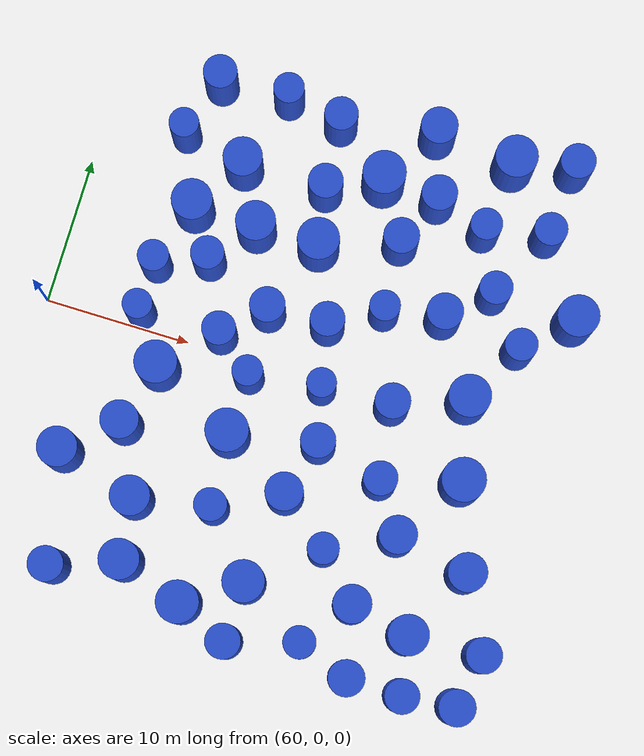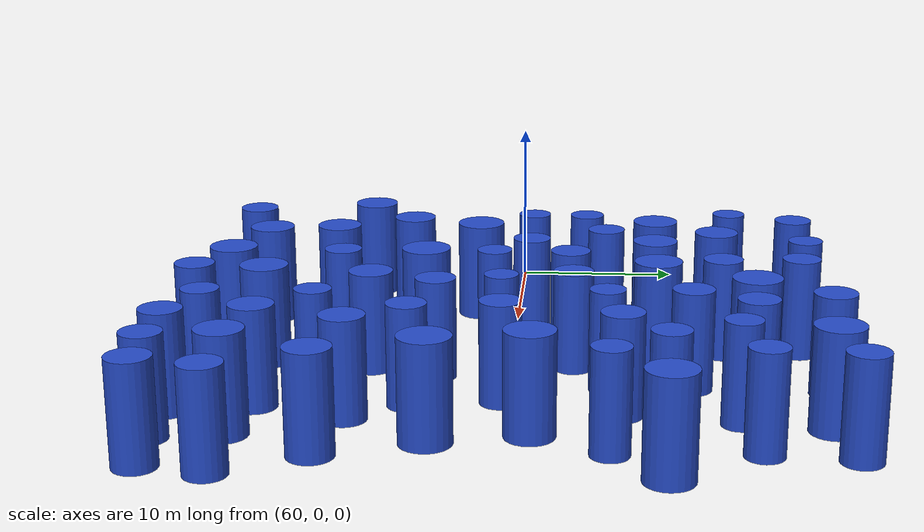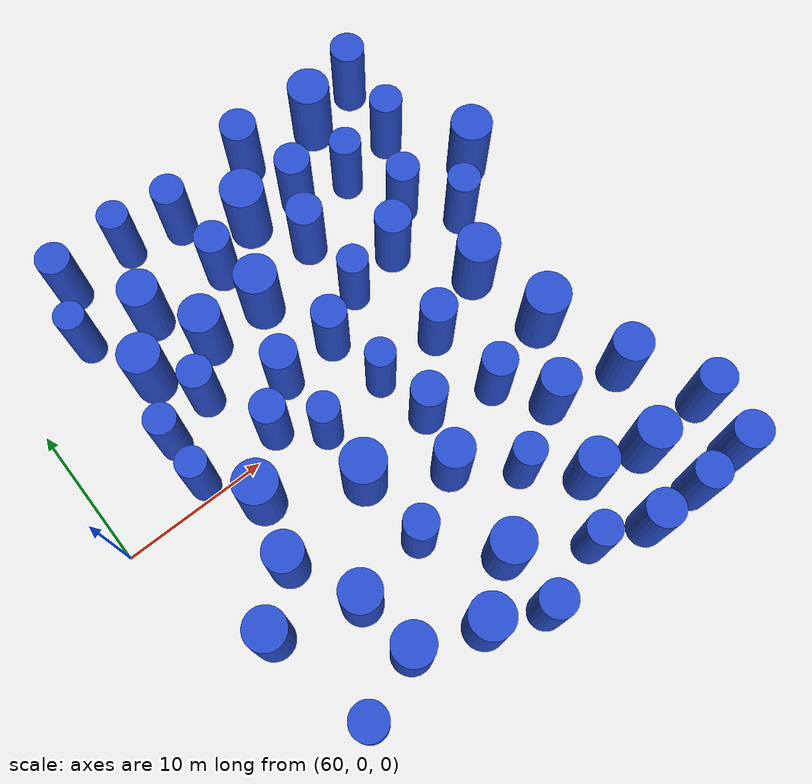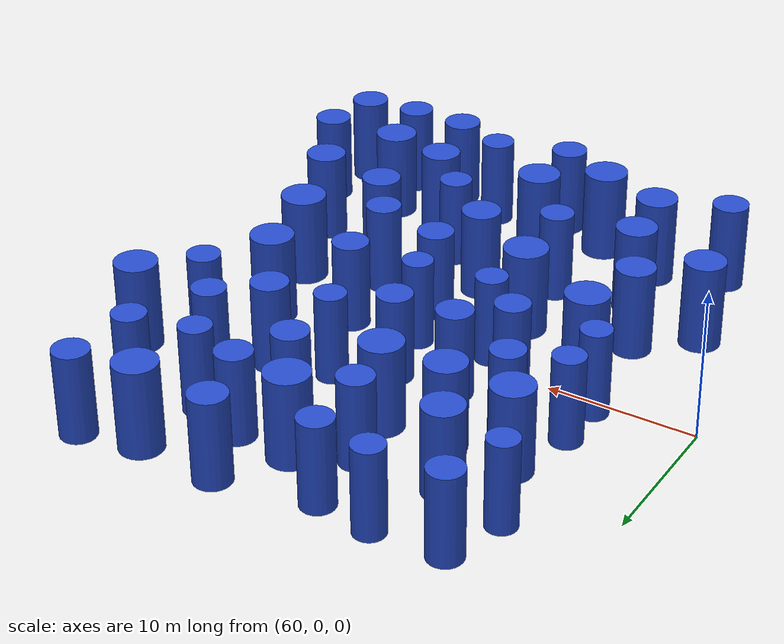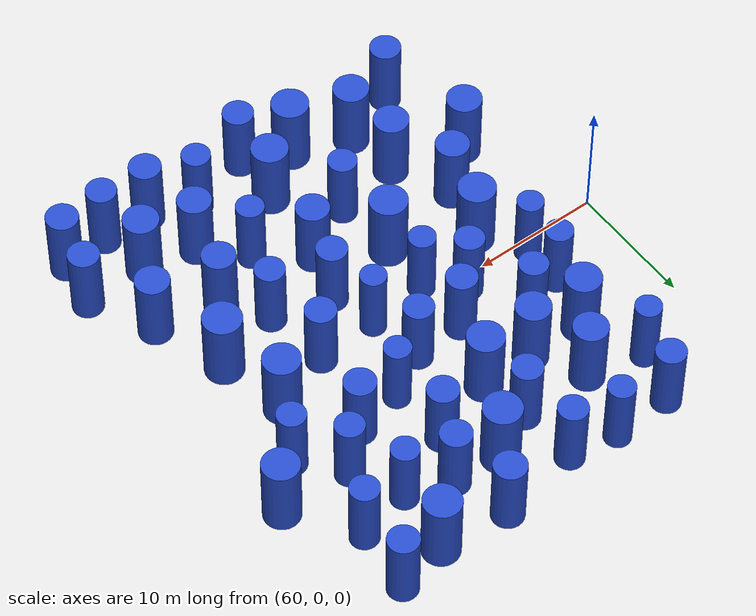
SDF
<sdf version="1.7">
 <world name="default">
  <model name="24">
   <static>1</static>
   <link name="link">
    <inertial>
     <mass>2</mass>
     <inertia><ixx>7.01181</ixx><ixy>0</ixy><ixz>0</ixz><iyy>7.01181</iyy><iyz>0</iyz><izz>2.02362</izz></inertia>
    </inertial>
    <collision name="collision">
     <geometry><cylinder><length>6</length><radius>1.42254</radius></cylinder></geometry>
     <surface><contact><collide_without_contact>1</collide_without_contact></contact></surface>
    </collision>
    <visual name="visual">
     <geometry><cylinder><length>6</length><radius>1.42254</radius></cylinder></geometry>
     <material>
      <script><uri>file://media/materials/scripts/gazebo.material</uri><name>Gazebo/Blue</name></script>
     </material>
    </visual>
    <gravity>0</gravity>
   </link>
   <pose>76.6418 8.60096 3 0 -0 0</pose>
  </model>
  <model name="32">
   <static>1</static>
   <link name="link">
    <inertial>
     <mass>2</mass>
     <inertia><ixx>6.6384</ixx><ixy>0</ixy><ixz>0</ixz><iyy>6.6384</iyy><iyz>0</iyz><izz>1.27681</izz></inertia>
    </inertial>
    <collision name="collision">
     <geometry><cylinder><length>6</length><radius>1.12996</radius></cylinder></geometry>
     <surface><contact><collide_without_contact>1</collide_without_contact></contact></surface>
    </collision>
    <visual name="visual">
     <geometry><cylinder><length>6</length><radius>1.12996</radius></cylinder></geometry>
     <material>
      <script><uri>file://media/materials/scripts/gazebo.material</uri><name>Gazebo/Blue</name></script>
     </material>
    </visual>
    <gravity>0</gravity>
   </link>
   <pose>69.8797 5.54499 3 0 -0 0</pose>
  </model>
  <model name="37">
   <static>1</static>
   <link name="link">
    <inertial>
     <mass>2</mass>
     <inertia><ixx>6.6858</ixx><ixy>0</ixy><ixz>0</ixz><iyy>6.6858</iyy><iyz>0</iyz><izz>1.37161</izz></inertia>
    </inertial>
    <collision name="collision">
     <geometry><cylinder><length>6</length><radius>1.17116</radius></cylinder></geometry>
     <surface><contact><collide_without_contact>1</collide_without_contact></contact></surface>
    </collision>
    <visual name="visual">
     <geometry><cylinder><length>6</length><radius>1.17116</radius></cylinder></geometry>
     <material>
      <script><uri>file://media/materials/scripts/gazebo.material</uri><name>Gazebo/Blue</name></script>
     </material>
    </visual>
    <gravity>0</gravity>
   </link>
   <pose>78.7902 3.64494 3 0 -0 0</pose>
  </model>
  <model name="41">
   <static>1</static>
   <link name="link">
    <inertial>
     <mass>2</mass>
     <inertia><ixx>6.6503</ixx><ixy>0</ixy><ixz>0</ixz><iyy>6.6503</iyy><iyz>0</iyz><izz>1.30061</izz></inertia>
    </inertial>
    <collision name="collision">
     <geometry><cylinder><length>6</length><radius>1.14044</radius></cylinder></geometry>
     <surface><contact><collide_without_contact>1</collide_without_contact></contact></surface>
    </collision>
    <visual name="visual">
     <geometry><cylinder><length>6</length><radius>1.14044</radius></cylinder></geometry>
     <material>
      <script><uri>file://media/materials/scripts/gazebo.material</uri><name>Gazebo/Blue</name></script>
     </material>
    </visual>
    <gravity>0</gravity>
   </link>
   <pose>75.6319 17.0916 3 0 -0 0</pose>
  </model>
  <model name="55">
   <static>1</static>
   <link name="link">
    <inertial>
     <mass>2</mass>
     <inertia><ixx>7.03224</ixx><ixy>0</ixy><ixz>0</ixz><iyy>7.03224</iyy><iyz>0</iyz><izz>2.06447</izz></inertia>
    </inertial>
    <collision name="collision">
     <geometry><cylinder><length>6</length><radius>1.43683</radius></cylinder></geometry>
     <surface><contact><collide_without_contact>1</collide_without_contact></contact></surface>
    </collision>
    <visual name="visual">
     <geometry><cylinder><length>6</length><radius>1.43683</radius></cylinder></geometry>
     <material>
      <script><uri>file://media/materials/scripts/gazebo.material</uri><name>Gazebo/Blue</name></script>
     </material>
    </visual>
    <gravity>0</gravity>
   </link>
   <pose>87.6271 17.7655 3 0 -0 0</pose>
  </model>
  <model name="65">
   <static>1</static>
   <link name="link">
    <inertial>
     <mass>2</mass>
     <inertia><ixx>7.11148</ixx><ixy>0</ixy><ixz>0</ixz><iyy>7.11148</iyy><iyz>0</iyz><izz>2.22295</izz></inertia>
    </inertial>
    <collision name="collision">
     <geometry><cylinder><length>6</length><radius>1.49096</radius></cylinder></geometry>
     <surface><contact><collide_without_contact>1</collide_without_contact></contact></surface>
    </collision>
    <visual name="visual">
     <geometry><cylinder><length>6</length><radius>1.49096</radius></cylinder></geometry>
     <material>
      <script><uri>file://media/materials/scripts/gazebo.material</uri><name>Gazebo/Blue</name></script>
     </material>
    </visual>
    <gravity>0</gravity>
   </link>
   <pose>90.4869 -3.8946 3 0 -0 0</pose>
  </model>
  <model name="75">
   <static>1</static>
   <link name="link">
    <inertial>
     <mass>2</mass>
     <inertia><ixx>6.73389</ixx><ixy>0</ixy><ixz>0</ixz><iyy>6.73389</iyy><iyz>0</iyz><izz>1.46778</izz></inertia>
    </inertial>
    <collision name="collision">
     <geometry><cylinder><length>6</length><radius>1.21152</radius></cylinder></geometry>
     <surface><contact><collide_without_contact>1</collide_without_contact></contact></surface>
    </collision>
    <visual name="visual">
     <geometry><cylinder><length>6</length><radius>1.21152</radius></cylinder></geometry>
     <material>
      <script><uri>file://media/materials/scripts/gazebo.material</uri><name>Gazebo/Blue</name></script>
     </material>
    </visual>
    <gravity>0</gravity>
   </link>
   <pose>81.8543 10.4126 3 0 -0 0</pose>
  </model>
  <model name="78">
   <static>1</static>
   <link name="link">
    <inertial>
     <mass>2</mass>
     <inertia><ixx>6.71877</ixx><ixy>0</ixy><ixz>0</ixz><iyy>6.71877</iyy><iyz>0</iyz><izz>1.43755</izz></inertia>
    </inertial>
    <collision name="collision">
     <geometry><cylinder><length>6</length><radius>1.19898</radius></cylinder></geometry>
     <surface><contact><collide_without_contact>1</collide_without_contact></contact></surface>
    </collision>
    <visual name="visual">
     <geometry><cylinder><length>6</length><radius>1.19898</radius></cylinder></geometry>
     <material>
      <script><uri>file://media/materials/scripts/gazebo.material</uri><name>Gazebo/Blue</name></script>
     </material>
    </visual>
    <gravity>0</gravity>
   </link>
   <pose>65.8716 -17.2179 3 0 -0 0</pose>
  </model>
  <model name="108">
   <static>1</static>
   <link name="link">
    <inertial>
     <mass>2</mass>
     <inertia><ixx>6.73212</ixx><ixy>0</ixy><ixz>0</ixz><iyy>6.73212</iyy><iyz>0</iyz><izz>1.46423</izz></inertia>
    </inertial>
    <collision name="collision">
     <geometry><cylinder><length>6</length><radius>1.21006</radius></cylinder></geometry>
     <surface><contact><collide_without_contact>1</collide_without_contact></contact></surface>
    </collision>
    <visual name="visual">
     <geometry><cylinder><length>6</length><radius>1.21006</radius></cylinder></geometry>
     <material>
      <script><uri>file://media/materials/scripts/gazebo.material</uri><name>Gazebo/Blue</name></script>
     </material>
    </visual>
    <gravity>0</gravity>
   </link>
   <pose>95.0646 -14.5267 3 0 -0 0</pose>
  </model>
  <model name="129">
   <static>1</static>
   <link name="link">
    <inertial>
     <mass>2</mass>
     <inertia><ixx>6.83309</ixx><ixy>0</ixy><ixz>0</ixz><iyy>6.83309</iyy><iyz>0</iyz><izz>1.66619</izz></inertia>
    </inertial>
    <collision name="collision">
     <geometry><cylinder><length>6</length><radius>1.29081</radius></cylinder></geometry>
     <surface><contact><collide_without_contact>1</collide_without_contact></contact></surface>
    </collision>
    <visual name="visual">
     <geometry><cylinder><length>6</length><radius>1.29081</radius></cylinder></geometry>
     <material>
      <script><uri>file://media/materials/scripts/gazebo.material</uri><name>Gazebo/Blue</name></script>
     </material>
    </visual>
    <gravity>0</gravity>
   </link>
   <pose>79.4211 -8.10495 3 0 -0 0</pose>
  </model>
  <model name="138">
   <static>1</static>
   <link name="link">
    <inertial>
     <mass>2</mass>
     <inertia><ixx>6.94642</ixx><ixy>0</ixy><ixz>0</ixz><iyy>6.94642</iyy><iyz>0</iyz><izz>1.89284</izz></inertia>
    </inertial>
    <collision name="collision">
     <geometry><cylinder><length>6</length><radius>1.37581</radius></cylinder></geometry>
     <surface><contact><collide_without_contact>1</collide_without_contact></contact></surface>
    </collision>
    <visual name="visual">
     <geometry><cylinder><length>6</length><radius>1.37581</radius></cylinder></geometry>
     <material>
      <script><uri>file://media/materials/scripts/gazebo.material</uri><name>Gazebo/Blue</name></script>
     </material>
    </visual>
    <gravity>0</gravity>
   </link>
   <pose>89.9608 -14.696 3 0 -0 0</pose>
  </model>
  <model name="140">
   <static>1</static>
   <link name="link">
    <inertial>
     <mass>2</mass>
     <inertia><ixx>6.91722</ixx><ixy>0</ixy><ixz>0</ixz><iyy>6.91722</iyy><iyz>0</iyz><izz>1.83444</izz></inertia>
    </inertial>
    <collision name="collision">
     <geometry><cylinder><length>6</length><radius>1.35441</radius></cylinder></geometry>
     <surface><contact><collide_without_contact>1</collide_without_contact></contact></surface>
    </collision>
    <visual name="visual">
     <geometry><cylinder><length>6</length><radius>1.35441</radius></cylinder></geometry>
     <material>
      <script><uri>file://media/materials/scripts/gazebo.material</uri><name>Gazebo/Blue</name></script>
     </material>
    </visual>
    <gravity>0</gravity>
   </link>
   <pose>69.8059 -11.3293 3 0 -0 0</pose>
  </model>
  <model name="146">
   <static>1</static>
   <link name="link">
    <inertial>
     <mass>2</mass>
     <inertia><ixx>6.61351</ixx><ixy>0</ixy><ixz>0</ixz><iyy>6.61351</iyy><iyz>0</iyz><izz>1.22702</izz></inertia>
    </inertial>
    <collision name="collision">
     <geometry><cylinder><length>6</length><radius>1.10771</radius></cylinder></geometry>
     <surface><contact><collide_without_contact>1</collide_without_contact></contact></surface>
    </collision>
    <visual name="visual">
     <geometry><cylinder><length>6</length><radius>1.10771</radius></cylinder></geometry>
     <material>
      <script><uri>file://media/materials/scripts/gazebo.material</uri><name>Gazebo/Blue</name></script>
     </material>
    </visual>
    <gravity>0</gravity>
   </link>
   <pose>83.2803 -17.2371 3 0 -0 0</pose>
  </model>
  <model name="150">
   <static>1</static>
   <link name="link">
    <inertial>
     <mass>2</mass>
     <inertia><ixx>6.51452</ixx><ixy>0</ixy><ixz>0</ixz><iyy>6.51452</iyy><iyz>0</iyz><izz>1.02904</izz></inertia>
    </inertial>
    <collision name="collision">
     <geometry><cylinder><length>6</length><radius>1.01441</radius></cylinder></geometry>
     <surface><contact><collide_without_contact>1</collide_without_contact></contact></surface>
    </collision>
    <visual name="visual">
     <geometry><cylinder><length>6</length><radius>1.01441</radius></cylinder></geometry>
     <material>
      <script><uri>file://media/materials/scripts/gazebo.material</uri><name>Gazebo/Blue</name></script>
     </material>
    </visual>
    <gravity>0</gravity>
   </link>
   <pose>66.4666 0.930848 3 0 -0 0</pose>
  </model>
  <model name="157">
   <static>1</static>
   <link name="link">
    <inertial>
     <mass>2</mass>
     <inertia><ixx>7.0304</ixx><ixy>0</ixy><ixz>0</ixz><iyy>7.0304</iyy><iyz>0</iyz><izz>2.06079</izz></inertia>
    </inertial>
    <collision name="collision">
     <geometry><cylinder><length>6</length><radius>1.43555</radius></cylinder></geometry>
     <surface><contact><collide_without_contact>1</collide_without_contact></contact></surface>
    </collision>
    <visual name="visual">
     <geometry><cylinder><length>6</length><radius>1.43555</radius></cylinder></geometry>
     <material>
      <script><uri>file://media/materials/scripts/gazebo.material</uri><name>Gazebo/Blue</name></script>
     </material>
    </visual>
    <gravity>0</gravity>
   </link>
   <pose>89.2676 1.5251 3 0 -0 0</pose>
  </model>
  <model name="160">
   <static>1</static>
   <link name="link">
    <inertial>
     <mass>2</mass>
     <inertia><ixx>6.63212</ixx><ixy>0</ixy><ixz>0</ixz><iyy>6.63212</iyy><iyz>0</iyz><izz>1.26425</izz></inertia>
    </inertial>
    <collision name="collision">
     <geometry><cylinder><length>6</length><radius>1.12439</radius></cylinder></geometry>
     <surface><contact><collide_without_contact>1</collide_without_contact></contact></surface>
    </collision>
    <visual name="visual">
     <geometry><cylinder><length>6</length><radius>1.12439</radius></cylinder></geometry>
     <material>
      <script><uri>file://media/materials/scripts/gazebo.material</uri><name>Gazebo/Blue</name></script>
     </material>
    </visual>
    <gravity>0</gravity>
   </link>
   <pose>88.8516 8.91244 3 0 -0 0</pose>
  </model>
  <model name="162">
   <static>1</static>
   <link name="link">
    <inertial>
     <mass>2</mass>
     <inertia><ixx>6.88485</ixx><ixy>0</ixy><ixz>0</ixz><iyy>6.88485</iyy><iyz>0</iyz><izz>1.76971</izz></inertia>
    </inertial>
    <collision name="collision">
     <geometry><cylinder><length>6</length><radius>1.3303</radius></cylinder></geometry>
     <surface><contact><collide_without_contact>1</collide_without_contact></contact></surface>
    </collision>
    <visual name="visual">
     <geometry><cylinder><length>6</length><radius>1.3303</radius></cylinder></geometry>
     <material>
      <script><uri>file://media/materials/scripts/gazebo.material</uri><name>Gazebo/Blue</name></script>
     </material>
    </visual>
    <gravity>0</gravity>
   </link>
   <pose>70.2082 12.3892 3 0 -0 0</pose>
  </model>
  <model name="167">
   <static>1</static>
   <link name="link">
    <inertial>
     <mass>2</mass>
     <inertia><ixx>6.96244</ixx><ixy>0</ixy><ixz>0</ixz><iyy>6.96244</iyy><iyz>0</iyz><izz>1.92488</izz></inertia>
    </inertial>
    <collision name="collision">
     <geometry><cylinder><length>6</length><radius>1.3874</radius></cylinder></geometry>
     <surface><contact><collide_without_contact>1</collide_without_contact></contact></surface>
    </collision>
    <visual name="visual">
     <geometry><cylinder><length>6</length><radius>1.3874</radius></cylinder></geometry>
     <material>
      <script><uri>file://media/materials/scripts/gazebo.material</uri><name>Gazebo/Blue</name></script>
     </material>
    </visual>
    <gravity>0</gravity>
   </link>
   <pose>67.8325 8.65711 3 0 -0 0</pose>
  </model>
  <model name="175">
   <static>1</static>
   <link name="link">
    <inertial>
     <mass>2</mass>
     <inertia><ixx>7.04577</ixx><ixy>0</ixy><ixz>0</ixz><iyy>7.04577</iyy><iyz>0</iyz><izz>2.09154</izz></inertia>
    </inertial>
    <collision name="collision">
     <geometry><cylinder><length>6</length><radius>1.44621</radius></cylinder></geometry>
     <surface><contact><collide_without_contact>1</collide_without_contact></contact></surface>
    </collision>
    <visual name="visual">
     <geometry><cylinder><length>6</length><radius>1.44621</radius></cylinder></geometry>
     <material>
      <script><uri>file://media/materials/scripts/gazebo.material</uri><name>Gazebo/Blue</name></script>
     </material>
    </visual>
    <gravity>0</gravity>
   </link>
   <pose>68.7772 -2.40408 3 0 -0 0</pose>
  </model>
  <model name="183">
   <static>1</static>
   <link name="link">
    <inertial>
     <mass>2</mass>
     <inertia><ixx>7.07489</ixx><ixy>0</ixy><ixz>0</ixz><iyy>7.07489</iyy><iyz>0</iyz><izz>2.14978</izz></inertia>
    </inertial>
    <collision name="collision">
     <geometry><cylinder><length>6</length><radius>1.46621</radius></cylinder></geometry>
     <surface><contact><collide_without_contact>1</collide_without_contact></contact></surface>
    </collision>
    <visual name="visual">
     <geometry><cylinder><length>6</length><radius>1.46621</radius></cylinder></geometry>
     <material>
      <script><uri>file://media/materials/scripts/gazebo.material</uri><name>Gazebo/Blue</name></script>
     </material>
    </visual>
    <gravity>0</gravity>
   </link>
   <pose>74.6173 -5.34479 3 0 -0 0</pose>
  </model>
  <model name="184">
   <static>1</static>
   <link name="link">
    <inertial>
     <mass>2</mass>
     <inertia><ixx>6.72283</ixx><ixy>0</ixy><ixz>0</ixz><iyy>6.72283</iyy><iyz>0</iyz><izz>1.44566</izz></inertia>
    </inertial>
    <collision name="collision">
     <geometry><cylinder><length>6</length><radius>1.20236</radius></cylinder></geometry>
     <surface><contact><collide_without_contact>1</collide_without_contact></contact></surface>
    </collision>
    <visual name="visual">
     <geometry><cylinder><length>6</length><radius>1.20236</radius></cylinder></geometry>
     <material>
      <script><uri>file://media/materials/scripts/gazebo.material</uri><name>Gazebo/Blue</name></script>
     </material>
    </visual>
    <gravity>0</gravity>
   </link>
   <pose>84.5054 -0.288989 3 0 -0 0</pose>
  </model>
  <model name="204">
   <static>1</static>
   <link name="link">
    <inertial>
     <mass>2</mass>
     <inertia><ixx>7.07164</ixx><ixy>0</ixy><ixz>0</ixz><iyy>7.07164</iyy><iyz>0</iyz><izz>2.14328</izz></inertia>
    </inertial>
    <collision name="collision">
     <geometry><cylinder><length>6</length><radius>1.46399</radius></cylinder></geometry>
     <surface><contact><collide_without_contact>1</collide_without_contact></contact></surface>
    </collision>
    <visual name="visual">
     <geometry><cylinder><length>6</length><radius>1.46399</radius></cylinder></geometry>
     <material>
      <script><uri>file://media/materials/scripts/gazebo.material</uri><name>Gazebo/Blue</name></script>
     </material>
    </visual>
    <gravity>0</gravity>
   </link>
   <pose>79.5298 14.1536 3 0 -0 0</pose>
  </model>
  <model name="207">
   <static>1</static>
   <link name="link">
    <inertial>
     <mass>2</mass>
     <inertia><ixx>6.75972</ixx><ixy>0</ixy><ixz>0</ixz><iyy>6.75972</iyy><iyz>0</iyz><izz>1.51944</izz></inertia>
    </inertial>
    <collision name="collision">
     <geometry><cylinder><length>6</length><radius>1.23266</radius></cylinder></geometry>
     <surface><contact><collide_without_contact>1</collide_without_contact></contact></surface>
    </collision>
    <visual name="visual">
     <geometry><cylinder><length>6</length><radius>1.23266</radius></cylinder></geometry>
     <material>
      <script><uri>file://media/materials/scripts/gazebo.material</uri><name>Gazebo/Blue</name></script>
     </material>
    </visual>
    <gravity>0</gravity>
   </link>
   <pose>86.0793 6.41428 3 0 -0 0</pose>
  </model>
  <model name="218">
   <static>1</static>
   <link name="link">
    <inertial>
     <mass>2</mass>
     <inertia><ixx>6.54103</ixx><ixy>0</ixy><ixz>0</ixz><iyy>6.54103</iyy><iyz>0</iyz><izz>1.08207</izz></inertia>
    </inertial>
    <collision name="collision">
     <geometry><cylinder><length>6</length><radius>1.04023</radius></cylinder></geometry>
     <surface><contact><collide_without_contact>1</collide_without_contact></contact></surface>
    </collision>
    <visual name="visual">
     <geometry><cylinder><length>6</length><radius>1.04023</radius></cylinder></geometry>
     <material>
      <script><uri>file://media/materials/scripts/gazebo.material</uri><name>Gazebo/Blue</name></script>
     </material>
    </visual>
    <gravity>0</gravity>
   </link>
   <pose>82.1674 5.61199 3 0 -0 0</pose>
  </model>
  <model name="221">
   <static>1</static>
   <link name="link">
    <inertial>
     <mass>2</mass>
     <inertia><ixx>6.62865</ixx><ixy>0</ixy><ixz>0</ixz><iyy>6.62865</iyy><iyz>0</iyz><izz>1.25729</izz></inertia>
    </inertial>
    <collision name="collision">
     <geometry><cylinder><length>6</length><radius>1.12129</radius></cylinder></geometry>
     <surface><contact><collide_without_contact>1</collide_without_contact></contact></surface>
    </collision>
    <visual name="visual">
     <geometry><cylinder><length>6</length><radius>1.12129</radius></cylinder></geometry>
     <material>
      <script><uri>file://media/materials/scripts/gazebo.material</uri><name>Gazebo/Blue</name></script>
     </material>
    </visual>
    <gravity>0</gravity>
   </link>
   <pose>75.0432 -10.344 3 0 -0 0</pose>
  </model>
  <model name="229">
   <static>1</static>
   <link name="link">
    <inertial>
     <mass>2</mass>
     <inertia><ixx>7.04043</ixx><ixy>0</ixy><ixz>0</ixz><iyy>7.04043</iyy><iyz>0</iyz><izz>2.08086</izz></inertia>
    </inertial>
    <collision name="collision">
     <geometry><cylinder><length>6</length><radius>1.44252</radius></cylinder></geometry>
     <surface><contact><collide_without_contact>1</collide_without_contact></contact></surface>
    </collision>
    <visual name="visual">
     <geometry><cylinder><length>6</length><radius>1.44252</radius></cylinder></geometry>
     <material>
      <script><uri>file://media/materials/scripts/gazebo.material</uri><name>Gazebo/Blue</name></script>
     </material>
    </visual>
    <gravity>0</gravity>
   </link>
   <pose>74.8638 -17.0616 3 0 -0 0</pose>
  </model>
  <model name="233">
   <static>1</static>
   <link name="link">
    <inertial>
     <mass>2</mass>
     <inertia><ixx>6.65615</ixx><ixy>0</ixy><ixz>0</ixz><iyy>6.65615</iyy><iyz>0</iyz><izz>1.3123</izz></inertia>
    </inertial>
    <collision name="collision">
     <geometry><cylinder><length>6</length><radius>1.14556</radius></cylinder></geometry>
     <surface><contact><collide_without_contact>1</collide_without_contact></contact></surface>
    </collision>
    <visual name="visual">
     <geometry><cylinder><length>6</length><radius>1.14556</radius></cylinder></geometry>
     <material>
      <script><uri>file://media/materials/scripts/gazebo.material</uri><name>Gazebo/Blue</name></script>
     </material>
    </visual>
    <gravity>0</gravity>
   </link>
   <pose>72.0975 0.954168 3 0 -0 0</pose>
  </model>
  <model name="239">
   <static>1</static>
   <link name="link">
    <inertial>
     <mass>2</mass>
     <inertia><ixx>6.50526</ixx><ixy>0</ixy><ixz>0</ixz><iyy>6.50526</iyy><iyz>0</iyz><izz>1.01051</izz></inertia>
    </inertial>
    <collision name="collision">
     <geometry><cylinder><length>6</length><radius>1.00524</radius></cylinder></geometry>
     <surface><contact><collide_without_contact>1</collide_without_contact></contact></surface>
    </collision>
    <visual name="visual">
     <geometry><cylinder><length>6</length><radius>1.00524</radius></cylinder></geometry>
     <material>
      <script><uri>file://media/materials/scripts/gazebo.material</uri><name>Gazebo/Blue</name></script>
     </material>
    </visual>
    <gravity>0</gravity>
   </link>
   <pose>79.6599 -0.511663 3 0 -0 0</pose>
  </model>
  <model name="255">
   <static>1</static>
   <link name="link">
    <inertial>
     <mass>2</mass>
     <inertia><ixx>6.547</ixx><ixy>0</ixy><ixz>0</ixz><iyy>6.547</iyy><iyz>0</iyz><izz>1.09401</izz></inertia>
    </inertial>
    <collision name="collision">
     <geometry><cylinder><length>6</length><radius>1.04595</radius></cylinder></geometry>
     <surface><contact><collide_without_contact>1</collide_without_contact></contact></surface>
    </collision>
    <visual name="visual">
     <geometry><cylinder><length>6</length><radius>1.04595</radius></cylinder></geometry>
     <material>
      <script><uri>file://media/materials/scripts/gazebo.material</uri><name>Gazebo/Blue</name></script>
     </material>
    </visual>
    <gravity>0</gravity>
   </link>
   <pose>71.7837 17.7252 3 0 -0 0</pose>
  </model>
  <model name="265">
   <static>1</static>
   <link name="link">
    <inertial>
     <mass>2</mass>
     <inertia><ixx>6.5107</ixx><ixy>0</ixy><ixz>0</ixz><iyy>6.5107</iyy><iyz>0</iyz><izz>1.02139</izz></inertia>
    </inertial>
    <collision name="collision">
     <geometry><cylinder><length>6</length><radius>1.01064</radius></cylinder></geometry>
     <surface><contact><collide_without_contact>1</collide_without_contact></contact></surface>
    </collision>
    <visual name="visual">
     <geometry><cylinder><length>6</length><radius>1.01064</radius></cylinder></geometry>
     <material>
      <script><uri>file://media/materials/scripts/gazebo.material</uri><name>Gazebo/Blue</name></script>
     </material>
    </visual>
    <gravity>0</gravity>
   </link>
   <pose>65.7884 13.4405 3 0 -0 0</pose>
  </model>
  <model name="268">
   <static>1</static>
   <link name="link">
    <inertial>
     <mass>2</mass>
     <inertia><ixx>6.57963</ixx><ixy>0</ixy><ixz>0</ixz><iyy>6.57963</iyy><iyz>0</iyz><izz>1.15926</izz></inertia>
    </inertial>
    <collision name="collision">
     <geometry><cylinder><length>6</length><radius>1.07669</radius></cylinder></geometry>
     <surface><contact><collide_without_contact>1</collide_without_contact></contact></surface>
    </collision>
    <visual name="visual">
     <geometry><cylinder><length>6</length><radius>1.07669</radius></cylinder></geometry>
     <material>
      <script><uri>file://media/materials/scripts/gazebo.material</uri><name>Gazebo/Blue</name></script>
     </material>
    </visual>
    <gravity>0</gravity>
   </link>
   <pose>87.0142 12.8081 3 0 -0 0</pose>
  </model>
  <model name="310">
   <static>1</static>
   <link name="link">
    <inertial>
     <mass>2</mass>
     <inertia><ixx>6.6585</ixx><ixy>0</ixy><ixz>0</ixz><iyy>6.6585</iyy><iyz>0</iyz><izz>1.31701</izz></inertia>
    </inertial>
    <collision name="collision">
     <geometry><cylinder><length>6</length><radius>1.14761</radius></cylinder></geometry>
     <surface><contact><collide_without_contact>1</collide_without_contact></contact></surface>
    </collision>
    <visual name="visual">
     <geometry><cylinder><length>6</length><radius>1.14761</radius></cylinder></geometry>
     <material>
      <script><uri>file://media/materials/scripts/gazebo.material</uri><name>Gazebo/Blue</name></script>
     </material>
    </visual>
    <gravity>0</gravity>
   </link>
   <pose>67.0735 17.4414 3 0 -0 0</pose>
  </model>
  <model name="317">
   <static>1</static>
   <link name="link">
    <inertial>
     <mass>2</mass>
     <inertia><ixx>6.99658</ixx><ixy>0</ixy><ixz>0</ixz><iyy>6.99658</iyy><iyz>0</iyz><izz>1.99316</izz></inertia>
    </inertial>
    <collision name="collision">
     <geometry><cylinder><length>6</length><radius>1.41179</radius></cylinder></geometry>
     <surface><contact><collide_without_contact>1</collide_without_contact></contact></surface>
    </collision>
    <visual name="visual">
     <geometry><cylinder><length>6</length><radius>1.41179</radius></cylinder></geometry>
     <material>
      <script><uri>file://media/materials/scripts/gazebo.material</uri><name>Gazebo/Blue</name></script>
     </material>
    </visual>
    <gravity>0</gravity>
   </link>
   <pose>94.6016 8.71496 3 0 -0 0</pose>
  </model>
  <model name="320">
   <static>1</static>
   <link name="link">
    <inertial>
     <mass>2</mass>
     <inertia><ixx>6.92188</ixx><ixy>0</ixy><ixz>0</ixz><iyy>6.92188</iyy><iyz>0</iyz><izz>1.84377</izz></inertia>
    </inertial>
    <collision name="collision">
     <geometry><cylinder><length>6</length><radius>1.35785</radius></cylinder></geometry>
     <surface><contact><collide_without_contact>1</collide_without_contact></contact></surface>
    </collision>
    <visual name="visual">
     <geometry><cylinder><length>6</length><radius>1.35785</radius></cylinder></geometry>
     <material>
      <script><uri>file://media/materials/scripts/gazebo.material</uri><name>Gazebo/Blue</name></script>
     </material>
    </visual>
    <gravity>0</gravity>
   </link>
   <pose>64.2641 -9.6674 3 0 -0 0</pose>
  </model>
  <model name="329">
   <static>1</static>
   <link name="link">
    <inertial>
     <mass>2</mass>
     <inertia><ixx>6.58069</ixx><ixy>0</ixy><ixz>0</ixz><iyy>6.58069</iyy><iyz>0</iyz><izz>1.16138</izz></inertia>
    </inertial>
    <collision name="collision">
     <geometry><cylinder><length>6</length><radius>1.07767</radius></cylinder></geometry>
     <surface><contact><collide_without_contact>1</collide_without_contact></contact></surface>
    </collision>
    <visual name="visual">
     <geometry><cylinder><length>6</length><radius>1.07767</radius></cylinder></geometry>
     <material>
      <script><uri>file://media/materials/scripts/gazebo.material</uri><name>Gazebo/Blue</name></script>
     </material>
    </visual>
    <gravity>0</gravity>
   </link>
   <pose>82.969 -10.9144 3 0 -0 0</pose>
  </model>
  <model name="332">
   <static>1</static>
   <link name="link">
    <inertial>
     <mass>2</mass>
     <inertia><ixx>6.83281</ixx><ixy>0</ixy><ixz>0</ixz><iyy>6.83281</iyy><iyz>0</iyz><izz>1.66561</izz></inertia>
    </inertial>
    <collision name="collision">
     <geometry><cylinder><length>6</length><radius>1.29059</radius></cylinder></geometry>
     <surface><contact><collide_without_contact>1</collide_without_contact></contact></surface>
    </collision>
    <visual name="visual">
     <geometry><cylinder><length>6</length><radius>1.29059</radius></cylinder></geometry>
     <material>
      <script><uri>file://media/materials/scripts/gazebo.material</uri><name>Gazebo/Blue</name></script>
     </material>
    </visual>
    <gravity>0</gravity>
   </link>
   <pose>87.4008 -8.62387 3 0 -0 0</pose>
  </model>
  <model name="334">
   <static>1</static>
   <link name="link">
    <inertial>
     <mass>2</mass>
     <inertia><ixx>6.86939</ixx><ixy>0</ixy><ixz>0</ixz><iyy>6.86939</iyy><iyz>0</iyz><izz>1.73877</izz></inertia>
    </inertial>
    <collision name="collision">
     <geometry><cylinder><length>6</length><radius>1.31863</radius></cylinder></geometry>
     <surface><contact><collide_without_contact>1</collide_without_contact></contact></surface>
    </collision>
    <visual name="visual">
     <geometry><cylinder><length>6</length><radius>1.31863</radius></cylinder></geometry>
     <material>
      <script><uri>file://media/materials/scripts/gazebo.material</uri><name>Gazebo/Blue</name></script>
     </material>
    </visual>
    <gravity>0</gravity>
   </link>
   <pose>92.4821 -9.64457 3 0 -0 0</pose>
  </model>
  <model name="335">
   <static>1</static>
   <link name="link">
    <inertial>
     <mass>2</mass>
     <inertia><ixx>6.84017</ixx><ixy>0</ixy><ixz>0</ixz><iyy>6.84017</iyy><iyz>0</iyz><izz>1.68033</izz></inertia>
    </inertial>
    <collision name="collision">
     <geometry><cylinder><length>6</length><radius>1.29628</radius></cylinder></geometry>
     <surface><contact><collide_without_contact>1</collide_without_contact></contact></surface>
    </collision>
    <visual name="visual">
     <geometry><cylinder><length>6</length><radius>1.29628</radius></cylinder></geometry>
     <material>
      <script><uri>file://media/materials/scripts/gazebo.material</uri><name>Gazebo/Blue</name></script>
     </material>
    </visual>
    <gravity>0</gravity>
   </link>
   <pose>67.6436 -6.74537 3 0 -0 0</pose>
  </model>
  <model name="355">
   <static>1</static>
   <link name="link">
    <inertial>
     <mass>2</mass>
     <inertia><ixx>6.67167</ixx><ixy>0</ixy><ixz>0</ixz><iyy>6.67167</iyy><iyz>0</iyz><izz>1.34334</izz></inertia>
    </inertial>
    <collision name="collision">
     <geometry><cylinder><length>6</length><radius>1.15902</radius></cylinder></geometry>
     <surface><contact><collide_without_contact>1</collide_without_contact></contact></surface>
    </collision>
    <visual name="visual">
     <geometry><cylinder><length>6</length><radius>1.15902</radius></cylinder></geometry>
     <material>
      <script><uri>file://media/materials/scripts/gazebo.material</uri><name>Gazebo/Blue</name></script>
     </material>
    </visual>
    <gravity>0</gravity>
   </link>
   <pose>85.2209 -5.41632 3 0 -0 0</pose>
  </model>
  <model name="361">
   <static>1</static>
   <link name="link">
    <inertial>
     <mass>2</mass>
     <inertia><ixx>6.72897</ixx><ixy>0</ixy><ixz>0</ixz><iyy>6.72897</iyy><iyz>0</iyz><izz>1.45794</izz></inertia>
    </inertial>
    <collision name="collision">
     <geometry><cylinder><length>6</length><radius>1.20745</radius></cylinder></geometry>
     <surface><contact><collide_without_contact>1</collide_without_contact></contact></surface>
    </collision>
    <visual name="visual">
     <geometry><cylinder><length>6</length><radius>1.20745</radius></cylinder></geometry>
     <material>
      <script><uri>file://media/materials/scripts/gazebo.material</uri><name>Gazebo/Blue</name></script>
     </material>
    </visual>
    <gravity>0</gravity>
   </link>
   <pose>83.4323 13.9102 3 0 -0 0</pose>
  </model>
  <model name="372">
   <static>1</static>
   <link name="link">
    <inertial>
     <mass>2</mass>
     <inertia><ixx>6.70277</ixx><ixy>0</ixy><ixz>0</ixz><iyy>6.70277</iyy><iyz>0</iyz><izz>1.40553</izz></inertia>
    </inertial>
    <collision name="collision">
     <geometry><cylinder><length>6</length><radius>1.18555</radius></cylinder></geometry>
     <surface><contact><collide_without_contact>1</collide_without_contact></contact></surface>
    </collision>
    <visual name="visual">
     <geometry><cylinder><length>6</length><radius>1.18555</radius></cylinder></geometry>
     <material>
      <script><uri>file://media/materials/scripts/gazebo.material</uri><name>Gazebo/Blue</name></script>
     </material>
    </visual>
    <gravity>0</gravity>
   </link>
   <pose>91.6373 18.6508 3 0 -0 0</pose>
  </model>
  <model name="373">
   <static>1</static>
   <link name="link">
    <inertial>
     <mass>2</mass>
     <inertia><ixx>6.69571</ixx><ixy>0</ixy><ixz>0</ixz><iyy>6.69571</iyy><iyz>0</iyz><izz>1.39142</izz></inertia>
    </inertial>
    <collision name="collision">
     <geometry><cylinder><length>6</length><radius>1.17959</radius></cylinder></geometry>
     <surface><contact><collide_without_contact>1</collide_without_contact></contact></surface>
    </collision>
    <visual name="visual">
     <geometry><cylinder><length>6</length><radius>1.17959</radius></cylinder></geometry>
     <material>
      <script><uri>file://media/materials/scripts/gazebo.material</uri><name>Gazebo/Blue</name></script>
     </material>
    </visual>
    <gravity>0</gravity>
   </link>
   <pose>75.9649 12.4508 3 0 -0 0</pose>
  </model>
  <model name="390">
   <static>1</static>
   <link name="link">
    <inertial>
     <mass>2</mass>
     <inertia><ixx>6.62782</ixx><ixy>0</ixy><ixz>0</ixz><iyy>6.62782</iyy><iyz>0</iyz><izz>1.25564</izz></inertia>
    </inertial>
    <collision name="collision">
     <geometry><cylinder><length>6</length><radius>1.12055</radius></cylinder></geometry>
     <surface><contact><collide_without_contact>1</collide_without_contact></contact></surface>
    </collision>
    <visual name="visual">
     <geometry><cylinder><length>6</length><radius>1.12055</radius></cylinder></geometry>
     <material>
      <script><uri>file://media/materials/scripts/gazebo.material</uri><name>Gazebo/Blue</name></script>
     </material>
    </visual>
    <gravity>0</gravity>
   </link>
   <pose>91.2052 13.7409 3 0 -0 0</pose>
  </model>
  <model name="403">
   <static>1</static>
   <link name="link">
    <inertial>
     <mass>2</mass>
     <inertia><ixx>6.76371</ixx><ixy>0</ixy><ixz>0</ixz><iyy>6.76371</iyy><iyz>0</iyz><izz>1.52742</izz></inertia>
    </inertial>
    <collision name="collision">
     <geometry><cylinder><length>6</length><radius>1.23589</radius></cylinder></geometry>
     <surface><contact><collide_without_contact>1</collide_without_contact></contact></surface>
    </collision>
    <visual name="visual">
     <geometry><cylinder><length>6</length><radius>1.23589</radius></cylinder></geometry>
     <material>
      <script><uri>file://media/materials/scripts/gazebo.material</uri><name>Gazebo/Blue</name></script>
     </material>
    </visual>
    <gravity>0</gravity>
   </link>
   <pose>86.8989 -18.5694 3 0 -0 0</pose>
  </model>
  <model name="423">
   <static>1</static>
   <link name="link">
    <inertial>
     <mass>2</mass>
     <inertia><ixx>6.70429</ixx><ixy>0</ixy><ixz>0</ixz><iyy>6.70429</iyy><iyz>0</iyz><izz>1.40857</izz></inertia>
    </inertial>
    <collision name="collision">
     <geometry><cylinder><length>6</length><radius>1.18683</radius></cylinder></geometry>
     <surface><contact><collide_without_contact>1</collide_without_contact></contact></surface>
    </collision>
    <visual name="visual">
     <geometry><cylinder><length>6</length><radius>1.18683</radius></cylinder></geometry>
     <material>
      <script><uri>file://media/materials/scripts/gazebo.material</uri><name>Gazebo/Blue</name></script>
     </material>
    </visual>
    <gravity>0</gravity>
   </link>
   <pose>80.564 -4.23762 3 0 -0 0</pose>
  </model>
  <model name="432">
   <static>1</static>
   <link name="link">
    <inertial>
     <mass>2</mass>
     <inertia><ixx>6.94174</ixx><ixy>0</ixy><ixz>0</ixz><iyy>6.94174</iyy><iyz>0</iyz><izz>1.88348</izz></inertia>
    </inertial>
    <collision name="collision">
     <geometry><cylinder><length>6</length><radius>1.3724</radius></cylinder></geometry>
     <surface><contact><collide_without_contact>1</collide_without_contact></contact></surface>
    </collision>
    <visual name="visual">
     <geometry><cylinder><length>6</length><radius>1.3724</radius></cylinder></geometry>
     <material>
      <script><uri>file://media/materials/scripts/gazebo.material</uri><name>Gazebo/Blue</name></script>
     </material>
    </visual>
    <gravity>0</gravity>
   </link>
   <pose>70.3746 -15.5209 3 0 -0 0</pose>
  </model>
  <model name="439">
   <static>1</static>
   <link name="link">
    <inertial>
     <mass>2</mass>
     <inertia><ixx>7.01402</ixx><ixy>0</ixy><ixz>0</ixz><iyy>7.01402</iyy><iyz>0</iyz><izz>2.02803</izz></inertia>
    </inertial>
    <collision name="collision">
     <geometry><cylinder><length>6</length><radius>1.42409</radius></cylinder></geometry>
     <surface><contact><collide_without_contact>1</collide_without_contact></contact></surface>
    </collision>
    <visual name="visual">
     <geometry><cylinder><length>6</length><radius>1.42409</radius></cylinder></geometry>
     <material>
      <script><uri>file://media/materials/scripts/gazebo.material</uri><name>Gazebo/Blue</name></script>
     </material>
    </visual>
    <gravity>0</gravity>
   </link>
   <pose>78.5986 -14.5043 3 0 -0 0</pose>
  </model>
  <model name="467">
   <static>1</static>
   <link name="link">
    <inertial>
     <mass>2</mass>
     <inertia><ixx>6.77371</ixx><ixy>0</ixy><ixz>0</ixz><iyy>6.77371</iyy><iyz>0</iyz><izz>1.54741</izz></inertia>
    </inertial>
    <collision name="collision">
     <geometry><cylinder><length>6</length><radius>1.24395</radius></cylinder></geometry>
     <surface><contact><collide_without_contact>1</collide_without_contact></contact></surface>
    </collision>
    <visual name="visual">
     <geometry><cylinder><length>6</length><radius>1.24395</radius></cylinder></geometry>
     <material>
      <script><uri>file://media/materials/scripts/gazebo.material</uri><name>Gazebo/Blue</name></script>
     </material>
    </visual>
    <gravity>0</gravity>
   </link>
   <pose>94.3673 -18.2965 3 0 -0 0</pose>
  </model>
  <model name="471">
   <static>1</static>
   <link name="link">
    <inertial>
     <mass>2</mass>
     <inertia><ixx>6.61018</ixx><ixy>0</ixy><ixz>0</ixz><iyy>6.61018</iyy><iyz>0</iyz><izz>1.22035</izz></inertia>
    </inertial>
    <collision name="collision">
     <geometry><cylinder><length>6</length><radius>1.1047</radius></cylinder></geometry>
     <surface><contact><collide_without_contact>1</collide_without_contact></contact></surface>
    </collision>
    <visual name="visual">
     <geometry><cylinder><length>6</length><radius>1.1047</radius></cylinder></geometry>
     <material>
      <script><uri>file://media/materials/scripts/gazebo.material</uri><name>Gazebo/Blue</name></script>
     </material>
    </visual>
    <gravity>0</gravity>
   </link>
   <pose>91.5344 5.77066 3 0 -0 0</pose>
  </model>
  <model name="480">
   <static>1</static>
   <link name="link">
    <inertial>
     <mass>2</mass>
     <inertia><ixx>6.77675</ixx><ixy>0</ixy><ixz>0</ixz><iyy>6.77675</iyy><iyz>0</iyz><izz>1.5535</izz></inertia>
    </inertial>
    <collision name="collision">
     <geometry><cylinder><length>6</length><radius>1.2464</radius></cylinder></geometry>
     <surface><contact><collide_without_contact>1</collide_without_contact></contact></surface>
    </collision>
    <visual name="visual">
     <geometry><cylinder><length>6</length><radius>1.2464</radius></cylinder></geometry>
     <material>
      <script><uri>file://media/materials/scripts/gazebo.material</uri><name>Gazebo/Blue</name></script>
     </material>
    </visual>
    <gravity>0</gravity>
   </link>
   <pose>82.1151 18.2478 3 0 -0 0</pose>
  </model>
  <model name="484">
   <static>1</static>
   <link name="link">
    <inertial>
     <mass>2</mass>
     <inertia><ixx>6.91103</ixx><ixy>0</ixy><ixz>0</ixz><iyy>6.91103</iyy><iyz>0</iyz><izz>1.82207</izz></inertia>
    </inertial>
    <collision name="collision">
     <geometry><cylinder><length>6</length><radius>1.34984</radius></cylinder></geometry>
     <surface><contact><collide_without_contact>1</collide_without_contact></contact></surface>
    </collision>
    <visual name="visual">
     <geometry><cylinder><length>6</length><radius>1.34984</radius></cylinder></geometry>
     <material>
      <script><uri>file://media/materials/scripts/gazebo.material</uri><name>Gazebo/Blue</name></script>
     </material>
    </visual>
    <gravity>0</gravity>
   </link>
   <pose>72.3015 8.52797 3 0 -0 0</pose>
  </model>
  <model name="488">
   <static>1</static>
   <link name="link">
    <inertial>
     <mass>2</mass>
     <inertia><ixx>6.56291</ixx><ixy>0</ixy><ixz>0</ixz><iyy>6.56291</iyy><iyz>0</iyz><izz>1.12582</izz></inertia>
    </inertial>
    <collision name="collision">
     <geometry><cylinder><length>6</length><radius>1.06105</radius></cylinder></geometry>
     <surface><contact><collide_without_contact>1</collide_without_contact></contact></surface>
    </collision>
    <visual name="visual">
     <geometry><cylinder><length>6</length><radius>1.06105</radius></cylinder></geometry>
     <material>
      <script><uri>file://media/materials/scripts/gazebo.material</uri><name>Gazebo/Blue</name></script>
     </material>
    </visual>
    <gravity>0</gravity>
   </link>
   <pose>66.5059 4.31081 3 0 -0 0</pose>
  </model>
  <model name="491">
   <static>1</static>
   <link name="link">
    <inertial>
     <mass>2</mass>
     <inertia><ixx>6.71664</ixx><ixy>0</ixy><ixz>0</ixz><iyy>6.71664</iyy><iyz>0</iyz><izz>1.43328</izz></inertia>
    </inertial>
    <collision name="collision">
     <geometry><cylinder><length>6</length><radius>1.1972</radius></cylinder></geometry>
     <surface><contact><collide_without_contact>1</collide_without_contact></contact></surface>
    </collision>
    <visual name="visual">
     <geometry><cylinder><length>6</length><radius>1.1972</radius></cylinder></geometry>
     <material>
      <script><uri>file://media/materials/scripts/gazebo.material</uri><name>Gazebo/Blue</name></script>
     </material>
    </visual>
    <gravity>0</gravity>
   </link>
   <pose>74.705 3.39526 3 0 -0 0</pose>
  </model>
  <model name="504">
   <static>1</static>
   <link name="link">
    <inertial>
     <mass>2</mass>
     <inertia><ixx>6.54725</ixx><ixy>0</ixy><ixz>0</ixz><iyy>6.54725</iyy><iyz>0</iyz><izz>1.09451</izz></inertia>
    </inertial>
    <collision name="collision">
     <geometry><cylinder><length>6</length><radius>1.04619</radius></cylinder></geometry>
     <surface><contact><collide_without_contact>1</collide_without_contact></contact></surface>
    </collision>
    <visual name="visual">
     <geometry><cylinder><length>6</length><radius>1.04619</radius></cylinder></geometry>
     <material>
      <script><uri>file://media/materials/scripts/gazebo.material</uri><name>Gazebo/Blue</name></script>
     </material>
    </visual>
    <gravity>0</gravity>
   </link>
   <pose>74.7454 -1.18029 3 0 -0 0</pose>
  </model>
  <model name="522">
   <static>1</static>
   <link name="link">
    <inertial>
     <mass>2</mass>
     <inertia><ixx>6.71379</ixx><ixy>0</ixy><ixz>0</ixz><iyy>6.71379</iyy><iyz>0</iyz><izz>1.42757</izz></inertia>
    </inertial>
    <collision name="collision">
     <geometry><cylinder><length>6</length><radius>1.19481</radius></cylinder></geometry>
     <surface><contact><collide_without_contact>1</collide_without_contact></contact></surface>
    </collision>
    <visual name="visual">
     <geometry><cylinder><length>6</length><radius>1.19481</radius></cylinder></geometry>
     <material>
      <script><uri>file://media/materials/scripts/gazebo.material</uri><name>Gazebo/Blue</name></script>
     </material>
    </visual>
    <gravity>0</gravity>
   </link>
   <pose>78.4692 -18.6453 3 0 -0 0</pose>
  </model>
  <model name="530">
   <static>1</static>
   <link name="link">
    <inertial>
     <mass>2</mass>
     <inertia><ixx>6.84744</ixx><ixy>0</ixy><ixz>0</ixz><iyy>6.84744</iyy><iyz>0</iyz><izz>1.69488</izz></inertia>
    </inertial>
    <collision name="collision">
     <geometry><cylinder><length>6</length><radius>1.30188</radius></cylinder></geometry>
     <surface><contact><collide_without_contact>1</collide_without_contact></contact></surface>
    </collision>
    <visual name="visual">
     <geometry><cylinder><length>6</length><radius>1.30188</radius></cylinder></geometry>
     <material>
      <script><uri>file://media/materials/scripts/gazebo.material</uri><name>Gazebo/Blue</name></script>
     </material>
    </visual>
    <gravity>0</gravity>
   </link>
   <pose>85.8529 -13.8337 3 0 -0 0</pose>
  </model>
  <model name="566">
   <static>1</static>
   <link name="link">
    <inertial>
     <mass>2</mass>
     <inertia><ixx>6.69142</ixx><ixy>0</ixy><ixz>0</ixz><iyy>6.69142</iyy><iyz>0</iyz><izz>1.38285</izz></inertia>
    </inertial>
    <collision name="collision">
     <geometry><cylinder><length>6</length><radius>1.17595</radius></cylinder></geometry>
     <surface><contact><collide_without_contact>1</collide_without_contact></contact></surface>
    </collision>
    <visual name="visual">
     <geometry><cylinder><length>6</length><radius>1.17595</radius></cylinder></geometry>
     <material>
      <script><uri>file://media/materials/scripts/gazebo.material</uri><name>Gazebo/Blue</name></script>
     </material>
    </visual>
    <gravity>0</gravity>
   </link>
   <pose>90.7174 -18.6379 3 0 -0 0</pose>
  </model>
 </world>
</sdf>
